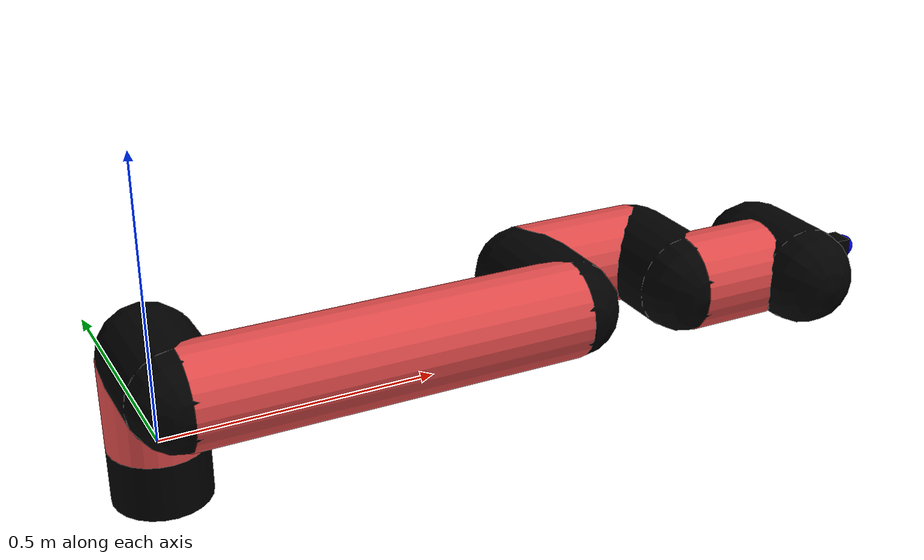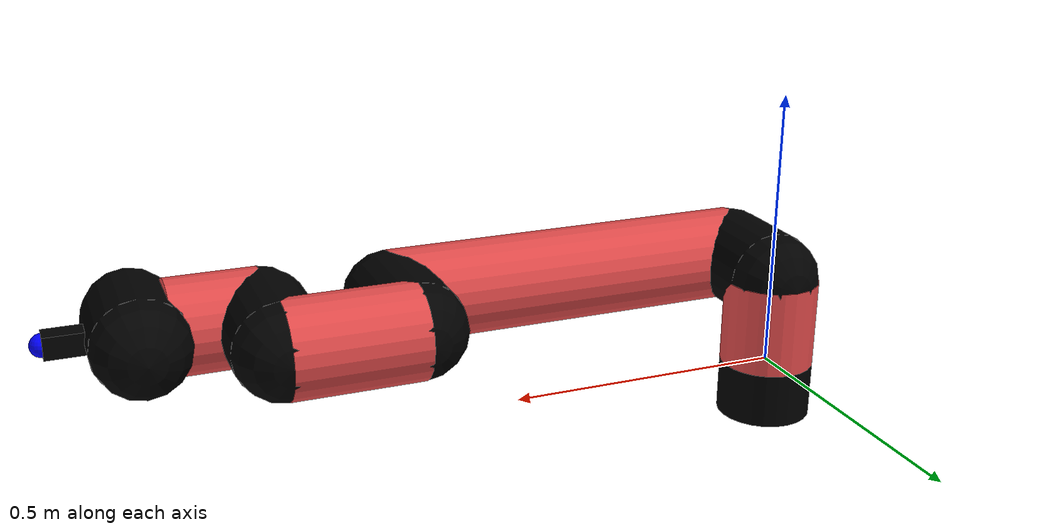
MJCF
<mujoco model="manipulator">
		<compiler angle="degree" coordinate="local" inertiafromgeom="auto" meshdir="meshes/"/>
		<option gravity="0 0 0" integrator="RK4" iterations="30" timestep="0.01"/>

		<default>
		<joint armature="1" limited="true" stiffness="10" damping="15" frictionloss="5.0"/>
		<geom conaffinity="1" condim="3" contype="1" friction=".5 .1 .1" margin="0.002"/>
		<motor ctrllimited="true"/>
		<position ctrllimited="true"/>
		</default>

		<asset>
		<texture builtin="gradient" height="100" rgb1="1.0 1.0 1.0" rgb2="1.0 1.0 1.0" type="skybox" width="100"/>
		<texture builtin="flat" height="32" name="arm_tex" rgb1="0.9 0.3 0.3" type="2d" width="32"/>
		<texture builtin="flat" height="32" name="gripper_tex" rgb1="0.0 0.0 0.0" type="cube" width="32"/>

		<material name="arm_mat" shininess="0.1" specular="0.1" texture="arm_tex"/>
		<material name="gripper_mat" shininess="1" specular="1" texture="gripper_tex"/>
		</asset>

		<worldbody>
		<light cutoff="45" diffuse=".8 .8 .8" dir="0 0.16 -1" directional="false" name="light" pos="0 -2.0 8.0" specular="0.3 0.3 0.3"/>

		<body name="base_link" pos="0 0 -0.1">
		<geom fromto="0 0 0 0 0 0.1" material="arm_mat" name="base_link" rgba="0.0 0.0 0.0 1" size="0.085" type="cylinder"/>
		</body>

		<body name="l1" pos="0 0 0">
<geom fromto="0 0 0 0 0 0.16" material="arm_mat" name="l1" rgba="0.9 0.3 0.3 1" size="0.085" type="cylinder"/>
<geom fromto="0 0 0.16 0 -0.16 0.16" material="arm_mat" name="l1_ex" rgba="0.0 0.0 0.0 1" size="0.085" type="capsule"/>
<joint axis="0 0 1" name="j1" pos="0 0 0" range="-90 90" damping="21.89" frictionloss="6.77"/>

<body name="l2" pos="0 -0.16 0.16">
<geom fromto="0 0 0 0.68 0 0" material="arm_mat" name="l2" rgba="0.9 0.3 0.3 1" size="0.085" type="cylinder"/>
<geom fromto="0.68 0 0 0.68 0.16 0" material="arm_mat" name="l2_ex" rgba="0.0 0.0 0.0 1" size="0.085" type="capsule"/>
<joint axis="0.0 1.0 0.0" name="j2" pos="0 0 0" range="-90 60" damping="38.95" frictionloss="12.97"/>

<body name="l3" pos="0.68 0.16 0">
<geom fromto="0 0 0 0.23 0 0" material="arm_mat" name="l3" rgba="0.9 0.3 0.3 1" size="0.085" type="cylinder"/>
<geom fromto="0.23 0 0 0.23 -0.16 0" material="arm_mat" name="l3_ex" rgba="0.0 0.0 0.0 1" size="0.085" type="capsule"/>
<joint axis="0.0 1.0 0.0" name="j3" pos="0 0 0" range="-30 60" damping="40.25" frictionloss="11.73"/>

<body name="l4" pos="0.23 -0.16 0">
<geom fromto="0 0 0 0.16 0 0" material="arm_mat" name="l4" rgba="0.9 0.3 0.3 1" size="0.085" type="cylinder"/>
<joint axis="0.0 1.0 0.0" name="j4" pos="0 0 0" range="-30 60" damping="15.44" frictionloss="12.56"/>

<body name="gripper" pos="0.16 0 0">
<geom fromto="0.05 -0.07 0 0.05 0.07 0" material="gripper_mat" name="gripper" rgba="0.0 0.0 0.0 1" size="0.085" type="capsule"/><joint axis="1 0 0" name="j5" pos="0 0 0" range="-90 90" damping="15" frictionloss="5.0"/><body name="finger" pos="0.1 0 0">
<geom fromto="0 0.0 0 0.1 0.0 0" material="gripper_mat" name="finger" rgba="0.0 0.0 0.0 1" size="0.020 0.06 0.06" type="box"/>
</body>
<site name="current" pos="0.2 0. 0.0" rgba="0. 0. 1.0 1" size="0.02" type="sphere"/>
</body>
</body>
</body>
</body>
</body>
</worldbody>
<actuator>
<motor ctrllimited="true" ctrlrange="-1.0 1.0" joint="j1" gear="86.76"/>
<motor ctrllimited="true" ctrlrange="-1.0 1.0" joint="j2" gear="105.31"/>
<motor ctrllimited="true" ctrlrange="-1.0 1.0" joint="j3" gear="46.66"/>
<motor ctrllimited="true" ctrlrange="-1.0 1.0" joint="j4" gear="59.96"/>
<motor ctrllimited="true" ctrlrange="-1.0 1.0" joint="j5" gear="80"/>
</actuator>
</mujoco>
